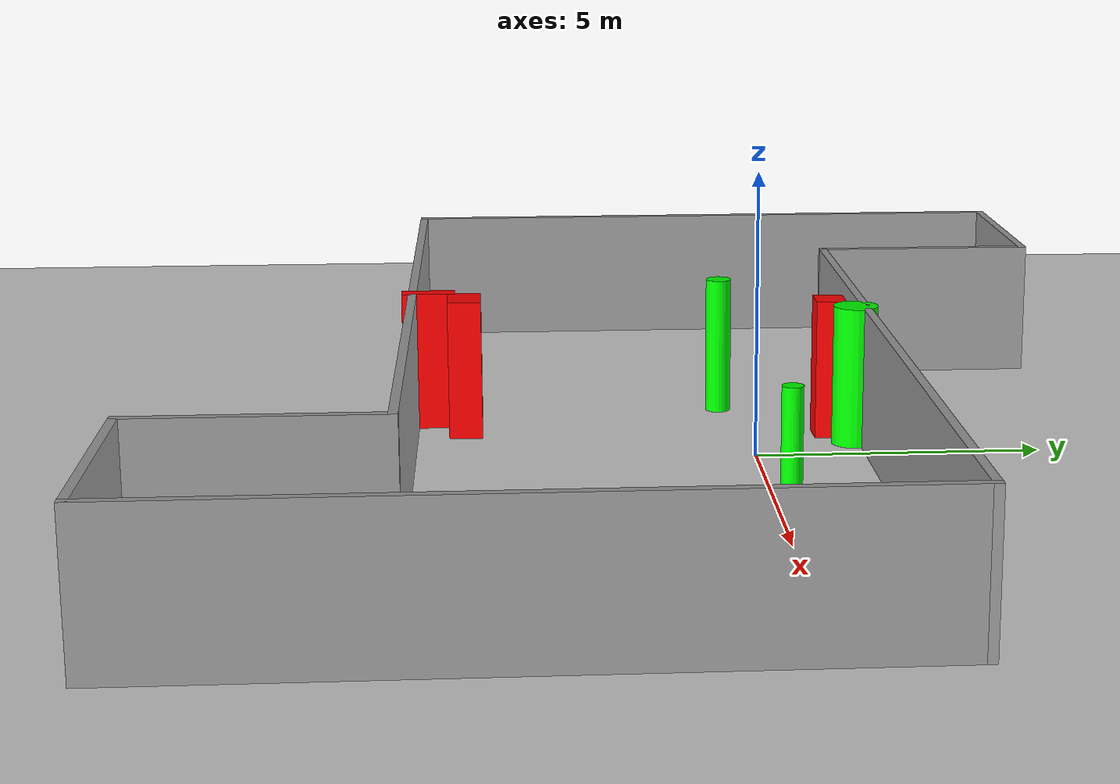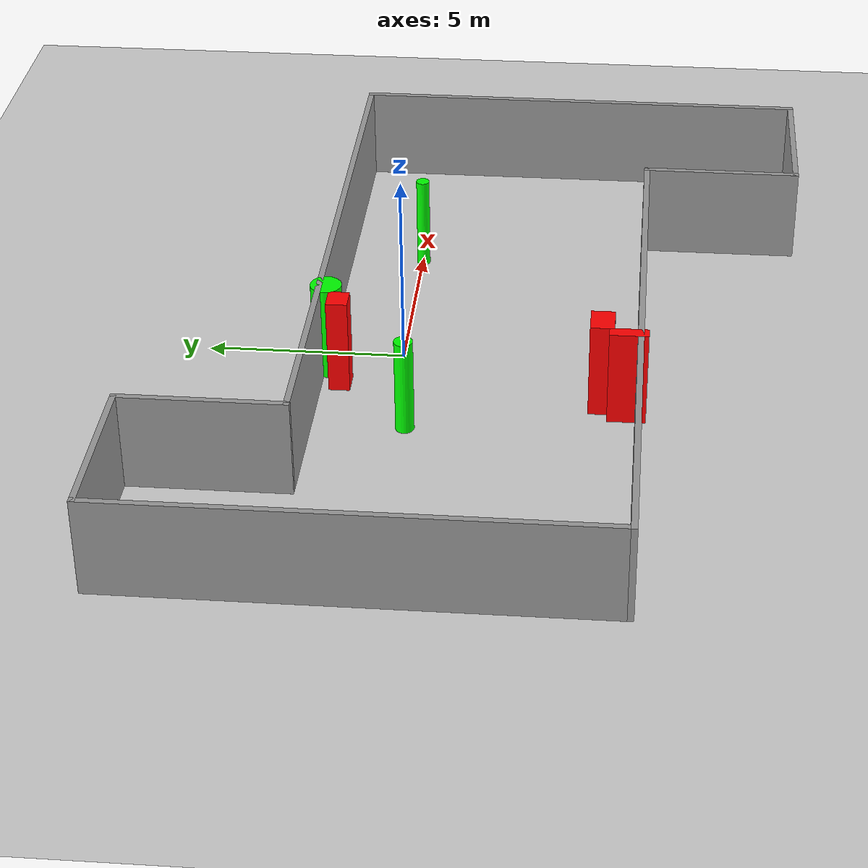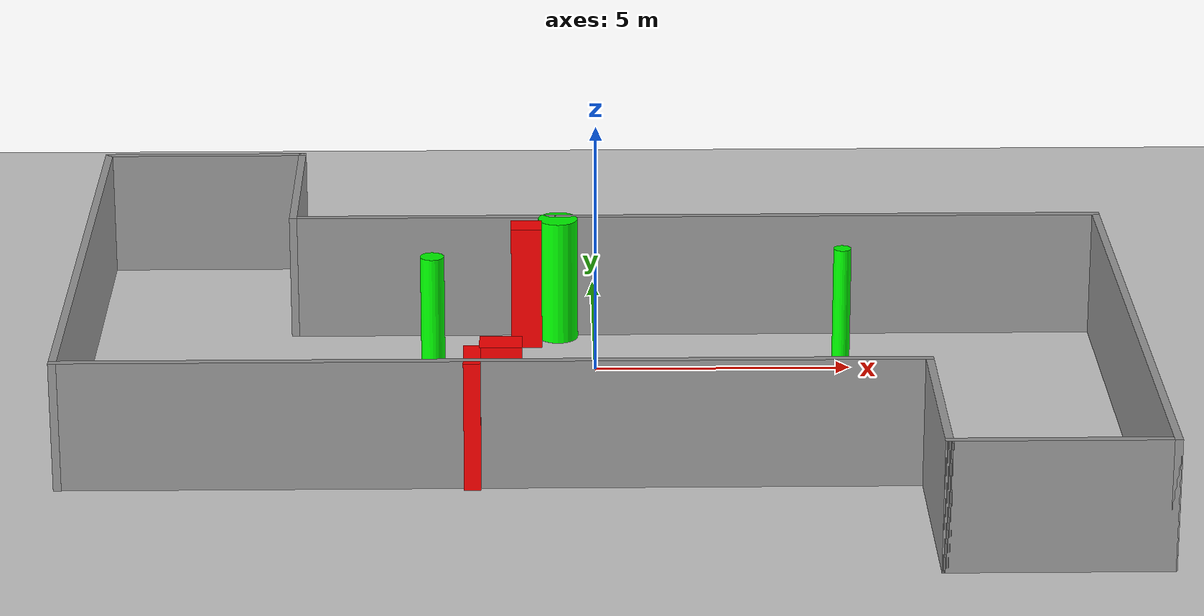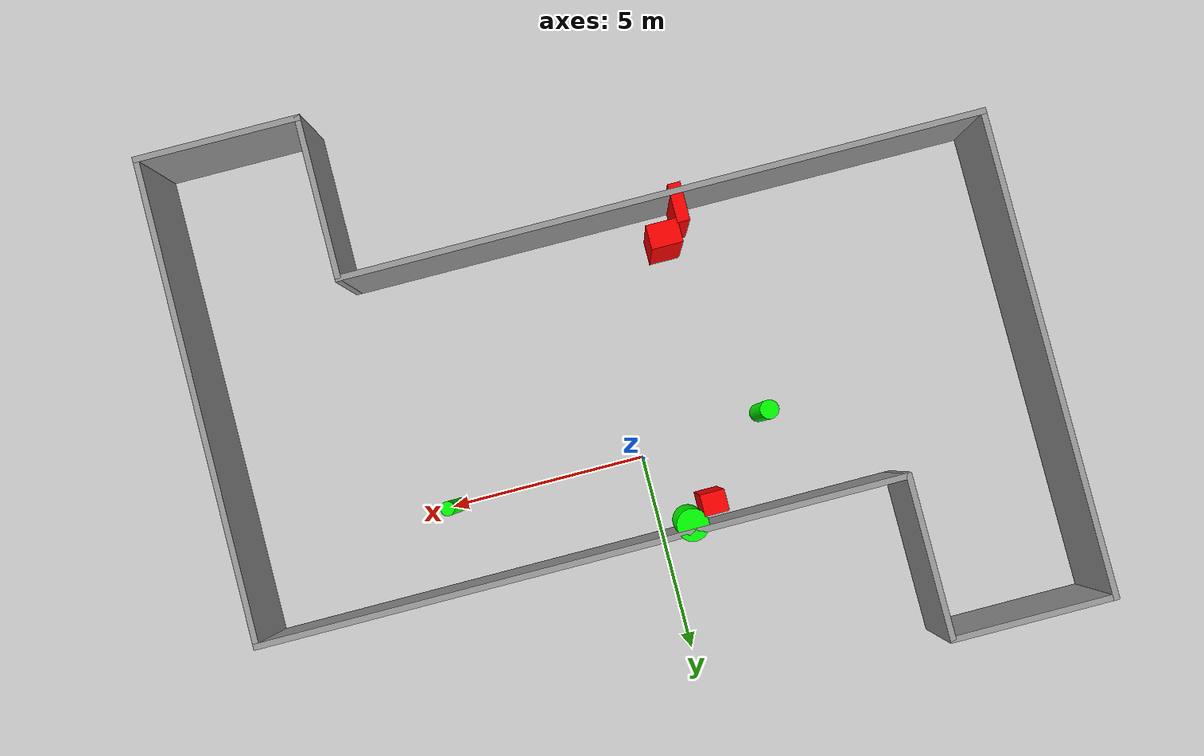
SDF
<sdf version="1.7">
 <world name="default">
  <light name="sun" type="directional">
   <pose>0 0 10 0 -0 0</pose>
   <diffuse>0.8 0.8 0.8 1</diffuse>
   <specular>0.2 0.2 0.2 1</specular>
   <attenuation>
    <range>1000</range>
    <constant>0.9</constant>
    <linear>0.01</linear>
    <quadratic>0.001</quadratic>
   </attenuation>
   <direction>-0.5 0.1 -0.9</direction>
   <spot><inner_angle>0</inner_angle><outer_angle>0</outer_angle><falloff>0</falloff></spot>
  </light>
  <model name="ground_plane">
   <static>1</static>
   <link name="link">
    <collision name="collision">
     <geometry><plane><normal>0 0 1</normal><size>100 100</size></plane></geometry>
     <surface>
      <contact><collide_bitmask>65535</collide_bitmask></contact>
      <friction><ode><mu>100</mu><mu2>50</mu2></ode></friction>
     </surface>
    </collision>
    <visual name="visual">
     <cast_shadows>0</cast_shadows>
     <geometry><plane><normal>0 0 1</normal><size>100 100</size></plane></geometry>
     <material>
      <script><uri>file://media/materials/scripts/gazebo.material</uri><name>Gazebo/Grey</name></script>
     </material>
    </visual>
   </link>
  </model>
  <gravity>0 0 -9.8</gravity>
  <magnetic_field>6e-06 2.3e-05 -4.2e-05</magnetic_field>
  <atmosphere type="adiabatic"/>
  <physics type="ode">
   <max_step_size>0.001</max_step_size>
   <real_time_factor>1</real_time_factor>
   <real_time_update_rate>1000</real_time_update_rate>
  </physics>
  <scene><ambient>0.4 0.4 0.4 1</ambient><background>0.7 0.7 0.7 1</background><shadows>1</shadows></scene>
  <spherical_coordinates>
   <surface_model>EARTH_WGS84</surface_model>
   <latitude_deg>0</latitude_deg>
   <longitude_deg>0</longitude_deg>
   <elevation>0</elevation>
   <heading_deg>0</heading_deg>
  </spherical_coordinates>
  <model name="my_base_walls">
   <link name="Wall_13">
    <collision name="Wall_13_Collision">
     <geometry><box><size>12.15 0.15 2.5</size></box></geometry>
     <pose>0 0 1.25 0 -0 0</pose>
    </collision>
    <visual name="Wall_13_Visual">
     <pose>0 0 1.25 0 -0 0</pose>
     <geometry><box><size>12.15 0.15 2.5</size></box></geometry>
     <material>
      <script><uri>file://media/materials/scripts/gazebo.material</uri><name>Gazebo/Grey</name></script>
      <ambient>1 1 1 1</ambient>
     </material>
     <meta><layer>0</layer></meta>
    </visual>
    <pose>10 -2 0 0 -0 1.5708</pose>
   </link>
   <link name="Wall_15">
    <collision name="Wall_15_Collision">
     <geometry><box><size>16.15 0.15 2.5</size></box></geometry>
     <pose>0 0 1.25 0 -0 0</pose>
    </collision>
    <visual name="Wall_15_Visual">
     <pose>0 0 1.25 0 -0 0</pose>
     <geometry><box><size>16.15 0.15 2.5</size></box></geometry>
     <material>
      <script><uri>file://media/materials/scripts/gazebo.material</uri><name>Gazebo/Grey</name></script>
      <ambient>1 1 1 1</ambient>
     </material>
     <meta><layer>0</layer></meta>
    </visual>
    <pose>2 4 0 0 -0 3.14159</pose>
   </link>
   <link name="Wall_17">
    <collision name="Wall_17_Collision">
     <geometry><box><size>4.15 0.15 2.5</size></box></geometry>
     <pose>0 0 1.25 0 -0 0</pose>
    </collision>
    <visual name="Wall_17_Visual">
     <pose>0 0 1.25 0 -0 0</pose>
     <geometry><box><size>4.15 0.15 2.5</size></box></geometry>
     <material>
      <script><uri>file://media/materials/scripts/gazebo.material</uri><name>Gazebo/Grey</name></script>
      <ambient>1 1 1 1</ambient>
     </material>
     <meta><layer>0</layer></meta>
    </visual>
    <pose>6 -6 0 0 -0 -1.5708</pose>
   </link>
   <link name="Wall_19">
    <collision name="Wall_19_Collision">
     <geometry><box><size>12.15 0.15 2.5</size></box></geometry>
     <pose>0 0 1.25 0 -0 0</pose>
    </collision>
    <visual name="Wall_19_Visual">
     <pose>0 0 1.25 0 -0 0</pose>
     <geometry><box><size>12.15 0.15 2.5</size></box></geometry>
     <material>
      <script><uri>file://media/materials/scripts/gazebo.material</uri><name>Gazebo/Grey</name></script>
      <ambient>1 1 1 1</ambient>
     </material>
     <meta><layer>0</layer></meta>
    </visual>
    <pose>-10 2 0 0 -0 1.5708</pose>
   </link>
   <link name="Wall_21">
    <collision name="Wall_21_Collision">
     <geometry><box><size>4.15 0.15 2.5</size></box></geometry>
     <pose>0 0 1.25 0 -0 0</pose>
    </collision>
    <visual name="Wall_21_Visual">
     <pose>0 0 1.25 0 -0 0</pose>
     <geometry><box><size>4.15 0.15 2.5</size></box></geometry>
     <material>
      <script><uri>file://media/materials/scripts/gazebo.material</uri><name>Gazebo/Grey</name></script>
      <ambient>1 1 1 1</ambient>
     </material>
     <meta><layer>0</layer></meta>
    </visual>
    <pose>-8 8 0 0 -0 0</pose>
   </link>
   <link name="Wall_23">
    <collision name="Wall_23_Collision">
     <geometry><box><size>4.15 0.15 2.5</size></box></geometry>
     <pose>0 0 1.25 0 -0 0</pose>
    </collision>
    <visual name="Wall_23_Visual">
     <pose>0 0 1.25 0 -0 0</pose>
     <geometry><box><size>4.15 0.15 2.5</size></box></geometry>
     <material>
      <script><uri>file://media/materials/scripts/gazebo.material</uri><name>Gazebo/Grey</name></script>
      <ambient>1 1 1 1</ambient>
     </material>
     <meta><layer>0</layer></meta>
    </visual>
    <pose>-6 6 0 0 -0 -1.5708</pose>
   </link>
   <link name="Wall_25">
    <collision name="Wall_25_Collision">
     <geometry><box><size>4.15 0.15 2.5</size></box></geometry>
     <pose>0 0 1.25 0 -0 0</pose>
    </collision>
    <visual name="Wall_25_Visual">
     <pose>0 0 1.25 0 -0 0</pose>
     <geometry><box><size>4.15 0.15 2.5</size></box></geometry>
     <material>
      <script><uri>file://media/materials/scripts/gazebo.material</uri><name>Gazebo/Grey</name></script>
      <ambient>1 1 1 1</ambient>
     </material>
     <meta><layer>0</layer></meta>
    </visual>
    <pose>8 -8 0 0 -0 0</pose>
   </link>
   <link name="Wall_9">
    <collision name="Wall_9_Collision">
     <geometry><box><size>16.15 0.15 2.5</size></box></geometry>
     <pose>0 0 1.25 0 -0 0</pose>
    </collision>
    <visual name="Wall_9_Visual">
     <pose>0 0 1.25 0 -0 0</pose>
     <geometry><box><size>16.15 0.15 2.5</size></box></geometry>
     <material>
      <script><uri>file://media/materials/scripts/gazebo.material</uri><name>Gazebo/Grey</name></script>
      <ambient>1 1 1 1</ambient>
     </material>
     <meta><layer>0</layer></meta>
    </visual>
    <pose>-2 -4 0 0 -0 3.14159</pose>
   </link>
   <static>1</static>
   <pose>-0 -2 0 0 -0 0</pose>
  </model>
  <model name="cylinder1">
   <static>1</static>
   <link name="link">
    <inertial>
     <mass>1</mass>
     <inertia><ixx>0.5</ixx><ixy>0</ixy><ixz>0</ixz><iyy>0.5</iyy><iyz>0</iyz><izz>1</izz></inertia>
    </inertial>
    <collision name="collision">
     <geometry><cylinder><radius>0.3931990078383564</radius><length>2.5</length></cylinder></geometry>
    </collision>
    <visual name="visual">
     <geometry><cylinder><radius>0.3931990078383564</radius><length>2.5</length></cylinder></geometry>
     <material>
      <ambient>0 1 0 1</ambient>
      <diffuse>0 1 0 1</diffuse>
      <specular>0.1 0.1 0.1 1</specular>
      <emissive>0 0 0 0</emissive>
     </material>
    </visual>
   </link>
   <pose>-0.7288035299569158 1.832490879990182 1.25 0 0 0</pose>
  </model>
  <model name="cylinder2">
   <static>1</static>
   <link name="link">
    <inertial>
     <mass>1</mass>
     <inertia><ixx>0.5</ixx><ixy>0</ixy><ixz>0</ixz><iyy>0.5</iyy><iyz>0</iyz><izz>1</izz></inertia>
    </inertial>
    <collision name="collision">
     <geometry><cylinder><radius>0.2320634395138773</radius><length>2.5</length></cylinder></geometry>
    </collision>
    <visual name="visual">
     <geometry><cylinder><radius>0.2320634395138773</radius><length>2.5</length></cylinder></geometry>
     <material>
      <ambient>0 1 0 1</ambient>
      <diffuse>0 1 0 1</diffuse>
      <specular>0.1 0.1 0.1 1</specular>
      <emissive>0 0 0 0</emissive>
     </material>
    </visual>
   </link>
   <pose>-3.18940851137589 -0.3616951738872771 1.25 0 0 0</pose>
  </model>
  <model name="cylinder3">
   <static>1</static>
   <link name="link">
    <inertial>
     <mass>1</mass>
     <inertia><ixx>0.5</ixx><ixy>0</ixy><ixz>0</ixz><iyy>0.5</iyy><iyz>0</iyz><izz>1</izz></inertia>
    </inertial>
    <collision name="collision">
     <geometry><cylinder><radius>0.17235975926727107</radius><length>2.5</length></cylinder></geometry>
    </collision>
    <visual name="visual">
     <geometry><cylinder><radius>0.17235975926727107</radius><length>2.5</length></cylinder></geometry>
     <material>
      <ambient>0 1 0 1</ambient>
      <diffuse>0 1 0 1</diffuse>
      <specular>0.1 0.1 0.1 1</specular>
      <emissive>0 0 0 0</emissive>
     </material>
    </visual>
   </link>
   <pose>4.814090479830794 -0.011338661289511442 1.25 0 0 0</pose>
  </model>
  <model name="box1">
   <static>1</static>
   <link name="link">
    <inertial>
     <mass>1</mass>
     <inertia><ixx>0.083</ixx><ixy>0</ixy><ixz>0</ixz><iyy>0.083</iyy><iyz>0</iyz><izz>0.083</izz></inertia>
    </inertial>
    <collision name="collision">
     <geometry><box><size>0.31608672570986407 0.9552846342694781 2.5</size></box></geometry>
    </collision>
    <visual name="visual">
     <geometry><box><size>0.31608672570986407 0.9552846342694781 2.5</size></box></geometry>
     <material>
      <ambient>1 0 0 1</ambient>
      <diffuse>1 0 0 1</diffuse>
      <specular>0.1 0.1 0.1 1</specular>
      <emissive>0 0 0 0</emissive>
     </material>
    </visual>
    <sensor name="my_contact" type="contact">
     <contact><collision>box_collision</collision><topic>__default_topic__</topic></contact>
    </sensor>
   </link>
   <pose>-2.3584378437440745 -5.7155014072838375 1.25 0 0 0</pose>
  </model>
  <model name="box2">
   <static>1</static>
   <link name="link">
    <inertial>
     <mass>1</mass>
     <inertia><ixx>0.083</ixx><ixy>0</ixy><ixz>0</ixz><iyy>0.083</iyy><iyz>0</iyz><izz>0.083</izz></inertia>
    </inertial>
    <collision name="collision">
     <geometry><box><size>0.7826717919159767 0.5944410750915055 2.5</size></box></geometry>
    </collision>
    <visual name="visual">
     <geometry><box><size>0.7826717919159767 0.5944410750915055 2.5</size></box></geometry>
     <material>
      <ambient>1 0 0 1</ambient>
      <diffuse>1 0 0 1</diffuse>
      <specular>0.1 0.1 0.1 1</specular>
      <emissive>0 0 0 0</emissive>
     </material>
    </visual>
    <sensor name="my_contact" type="contact">
     <contact><collision>box_collision</collision><topic>__default_topic__</topic></contact>
    </sensor>
   </link>
   <pose>-1.8349836985827803 -5.066667015863179 1.25 0 0 0</pose>
  </model>
  <model name="box3">
   <static>1</static>
   <link name="link">
    <inertial>
     <mass>1</mass>
     <inertia><ixx>0.083</ixx><ixy>0</ixy><ixz>0</ixz><iyy>0.083</iyy><iyz>0</iyz><izz>0.083</izz></inertia>
    </inertial>
    <collision name="collision">
     <geometry><box><size>0.6052561093301936 0.5313407566699816 2.5</size></box></geometry>
    </collision>
    <visual name="visual">
     <geometry><box><size>0.6052561093301936 0.5313407566699816 2.5</size></box></geometry>
     <material>
      <ambient>1 0 0 1</ambient>
      <diffuse>1 0 0 1</diffuse>
      <specular>0.1 0.1 0.1 1</specular>
      <emissive>0 0 0 0</emissive>
     </material>
    </visual>
    <sensor name="my_contact" type="contact">
     <contact><collision>box_collision</collision><topic>__default_topic__</topic></contact>
    </sensor>
   </link>
   <pose>-1.3593118617874351 1.4537476125726032 1.25 0 0 0</pose>
  </model>
 </world>
</sdf>
